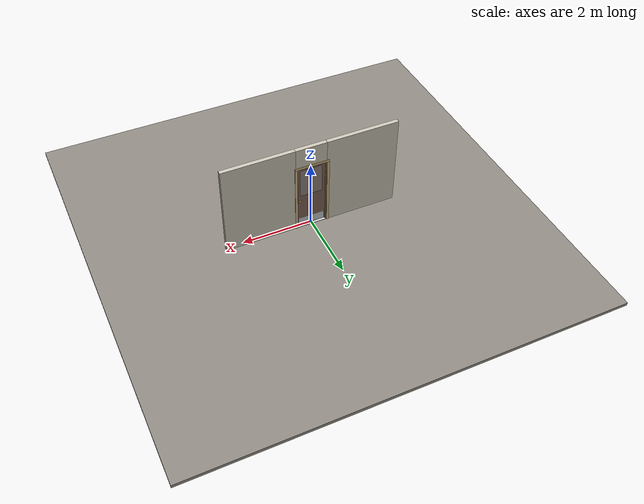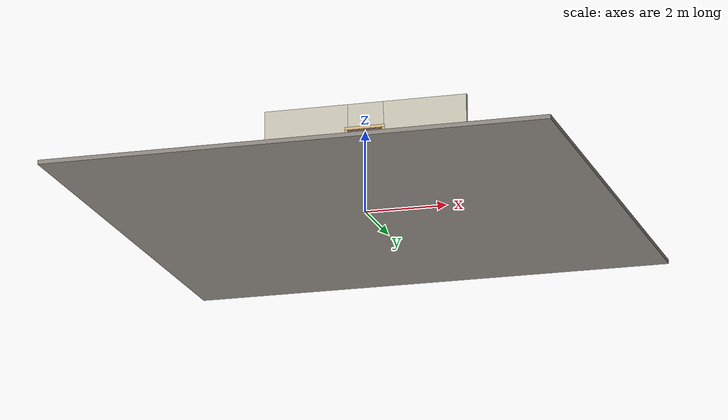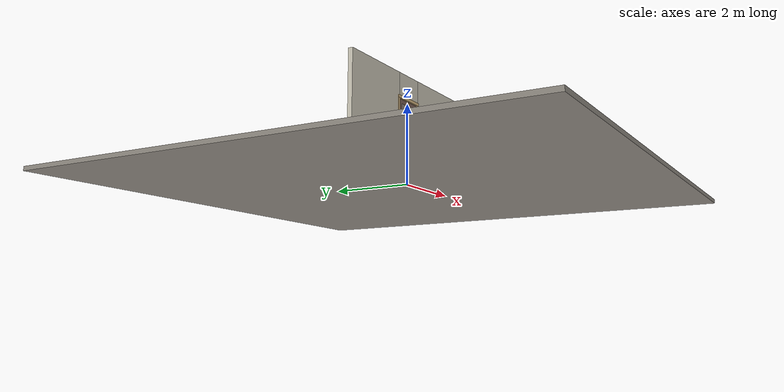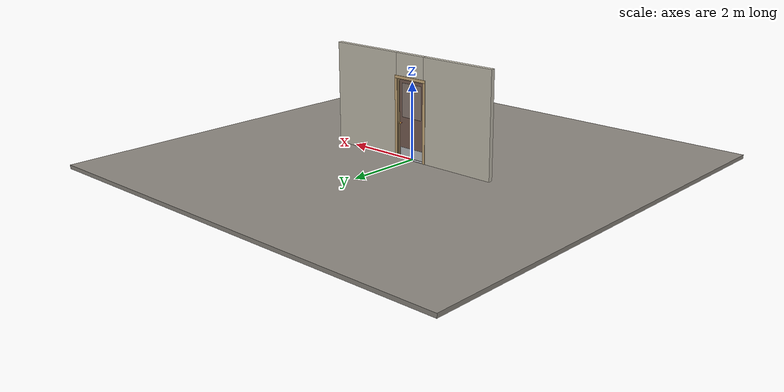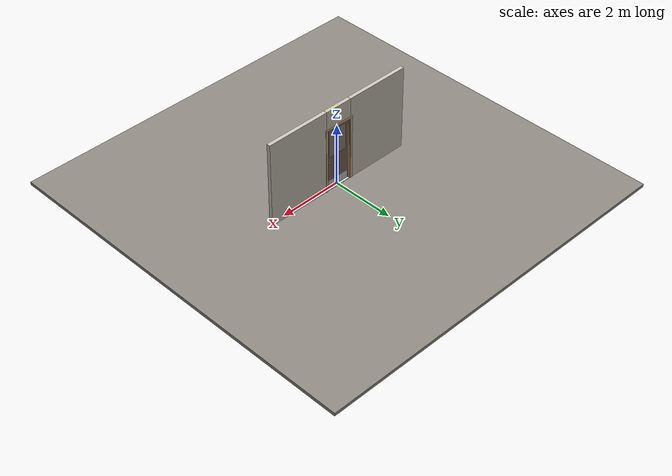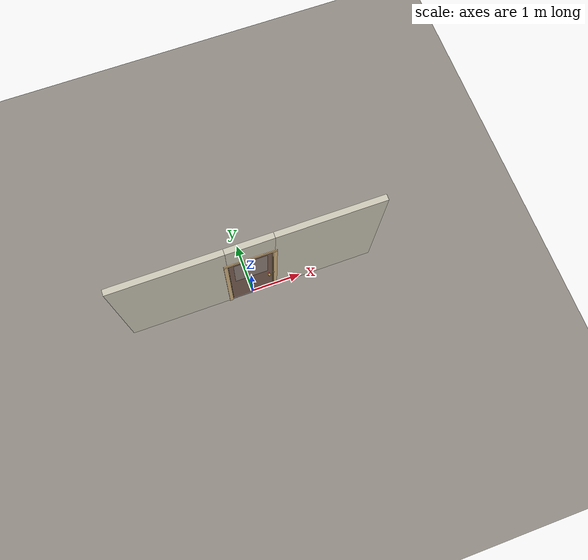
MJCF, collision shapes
<?xml version="1.0" ?>
<mujoco model="db0027_swing_single_full">
  <compiler angle="radian" meshdir="../../hardware" texturedir="../../textures" autolimits="true" inertiafromgeom="false"/>
  <option timestep="0.002" integrator="implicitfast" cone="elliptic" impratio="10" noslip_iterations="3">
    <flag multiccd="enable"/>
  </option>
  <size memory="16M"/>
  <default>
    <geom condim="4" solref="0.005 1" solimp="0.95 0.99 0.001"/>
    <joint solreflimit="0.005 1" solimplimit="0.95 0.99 0.001"/>
    <tendon solreflimit="0.005 1"/>
    <equality solref="0.002 1"/>
  </default>
  <visual>
    <headlight ambient="0.4 0.4 0.4" diffuse="0.7 0.7 0.7" specular="0.2 0.2 0.2"/>
    <quality shadowsize="4096"/>
    <map znear="0.01" zfar="60"/>
  </visual>
  <asset>
    <mesh name="hinge_e22b26c0c1" file="hinge_e22b26c0c1.obj"/>
    <mesh name="hinge_jamb_e1d088f8dc" file="hinge_jamb_e1d088f8dc.obj"/>
    <mesh name="knob_d1888f6f03" file="knob_d1888f6f03.obj"/>
    <mesh name="peephole_f829311a59" file="peephole_f829311a59.obj"/>
    <material name="mat_floor" rgba="0.55 0.53 0.5 1" specular="0.2" shininess="0.15" reflectance="0"/>
    <material name="mat_wall" rgba="0.78 0.76 0.7 1" specular="0.2" shininess="0.1" reflectance="0"/>
    <material name="mat_leaf" rgba="0.475 0.37 0.325 1" specular="0.2" shininess="0.55" reflectance="0"/>
    <material name="mat_glass" rgba="0.85 0.92 0.95 0.25" specular="0.2" shininess="0.95" reflectance="0.1"/>
    <material name="mat_hinge" rgba="0.65 0.66 0.68 1" specular="0.74" shininess="0.5" reflectance="0.36"/>
    <material name="mat_op_brass" rgba="0.85 0.66 0.3 1" specular="0.8" shininess="0.75" reflectance="0.4"/>
    <material name="mat_trim" rgba="0.85 0.66 0.3 1" specular="0.8" shininess="0.75" reflectance="0.4"/>
    <material name="mat_bolt" rgba="0.85 0.66 0.3 1" specular="0.8" shininess="0.75" reflectance="0.4"/>
    <material name="mat_frame" rgba="0.82 0.7 0.5 1" specular="0.2" shininess="0.45" reflectance="0"/>
    <material name="mat_threshold" rgba="0.8 0.81 0.83 1" specular="0.8" shininess="0.6" reflectance="0.4"/>
    <material name="mat_kick" rgba="0.75 0.76 0.77 1" specular="0.8" shininess="0.65" reflectance="0.4"/>
    <material name="mat_peephole" rgba="0.85 0.66 0.3 1" specular="0.8" shininess="0.75" reflectance="0.4"/>
    <texture name="skybox" type="skybox" builtin="gradient" rgb1="0.6 0.7 0.85" rgb2="0.9 0.92 0.95" width="256" height="256"/>
  </asset>
  <worldbody>
    <light name="sun" pos="1.5 -2.5 4" dir="-0.3 0.5 -0.8" directional="true" diffuse="0.8 0.8 0.8" specular="0.3 0.3 0.3" castshadow="true"/>
    <light name="fill" pos="-1.5 2.5 3" dir="0.3 -0.5 -0.7" directional="true" diffuse="0.35 0.35 0.4" castshadow="false"/>
    <camera name="robot_view" pos="0 -2.513687 1.734312" xyaxes="1 0 0 0 0.26963 0.962964" fovy="52"/>
    <camera name="far_view" pos="0 2.570688 1.734312" xyaxes="-1 0 0 0 -0.26963 0.962964" fovy="52"/>
    <camera name="iso" pos="1.932062 -2.106937 2.141063" xyaxes="0.741536 0.670913 0 -0.242917 0.268487 0.932151" fovy="46"/>
    <camera name="detail_handle" pos="0.5155 -0.8685 1.194" xyaxes="0.97561 0.219512 0 -0.070934 0.315262 0.94635" fovy="38"/>
    <geom name="floor" type="box" size="6 6 0.05" pos="0 0 -0.05" material="mat_floor" group="0" contype="1" conaffinity="1" friction="0.8 0.005 0.0001" density="2400"/>
    <geom name="wall_left" type="box" size="1.03525 0.0575 1.35" pos="-1.46475 0.0285 1.35" material="mat_wall" group="0" contype="1" conaffinity="1" friction="0.6 0.005 0.0001" density="800"/>
    <geom name="wall_right" type="box" size="1.02025 0.0575 1.35" pos="1.47975 0.0285 1.35" material="mat_wall" group="0" contype="1" conaffinity="1" friction="0.6 0.005 0.0001" density="800"/>
    <geom name="wall_header" type="box" size="0.4445 0.0575 0.303" pos="0.015 0.0285 2.397" material="mat_wall" group="0" contype="1" conaffinity="1" friction="0.6 0.005 0.0001" density="800"/>
    <geom name="hinge_0_jamb" type="mesh" mesh="hinge_jamb_e1d088f8dc" pos="-0.4075 -0.029 0.267" material="mat_hinge" group="1" contype="0" conaffinity="0" density="7850"/>
    <geom name="hinge_1_jamb" type="mesh" mesh="hinge_jamb_e1d088f8dc" pos="-0.4075 -0.029 1.029" material="mat_hinge" group="1" contype="0" conaffinity="0" density="7850"/>
    <geom name="hinge_2_jamb" type="mesh" mesh="hinge_jamb_e1d088f8dc" pos="-0.4075 -0.029 1.861" material="mat_hinge" group="1" contype="0" conaffinity="0" density="7850"/>
    <geom name="jamb_hinge" type="box" size="0.0095 0.0575 1.0225" pos="-0.42 0.0285 1.0225" material="mat_frame" group="0" contype="1" conaffinity="1" friction="0.6 0.005 0.0001" density="400"/>
    <geom name="strike_914_wall_n" type="box" size="0.0245 0.039075 0.0167" pos="0.435 0.046925 0.914" material="mat_frame" group="0" contype="1" conaffinity="1" friction="0.6 0.005 0.0001" density="400"/>
    <geom name="strike_914_wall_p" type="box" size="0.0245 0.008 0.0167" pos="0.435 -0.01585 0.914" material="mat_frame" group="0" contype="1" conaffinity="1" friction="0.6 0.005 0.0001" density="400"/>
    <geom name="strike_914_ramp" type="box" size="0.0245 0.01649 0.0167" pos="0.439636 -0.028673 0.914" quat="0.977148 0 0 0.212558" material="mat_frame" group="0" contype="1" conaffinity="1" friction="0.12 0.005 0.0001" density="400"/>
    <geom name="strike_914_back" type="box" size="0.01615 0.00785 0.0167" pos="0.44335 0 0.914" material="mat_frame" group="0" contype="1" conaffinity="1" friction="0.6 0.005 0.0001" density="400"/>
    <geom name="jamb_strike_0" type="box" size="0.0245 0.0575 0.44865" pos="0.435 0.0285 0.44865" material="mat_frame" group="0" contype="1" conaffinity="1" friction="0.6 0.005 0.0001" density="400"/>
    <geom name="jamb_strike_1" type="box" size="0.0245 0.0575 0.55715" pos="0.435 0.0285 1.48785" material="mat_frame" group="0" contype="1" conaffinity="1" friction="0.6 0.005 0.0001" density="400"/>
    <geom name="jamb_head" type="box" size="0.4445 0.0575 0.0095" pos="0.015 0.0285 2.0545" material="mat_frame" group="0" contype="1" conaffinity="1" friction="0.6 0.005 0.0001" density="400"/>
    <geom name="head_stud" type="box" size="0.4445 0.0575 0.015" pos="0.015 0.0285 2.079" material="mat_wall" group="0" contype="1" conaffinity="1" friction="0.6 0.005 0.0001" density="500"/>
    <geom name="stop_hinge" type="box" size="0.0055 0.016 1.0225" pos="-0.405 0.0385 1.0225" material="mat_frame" group="0" contype="1" conaffinity="1" friction="0.6 0.005 0.0001" density="400"/>
    <geom name="stop_strike" type="box" size="0.0055 0.016 1.0225" pos="0.405 0.0385 1.0225" material="mat_frame" group="0" contype="1" conaffinity="1" friction="0.6 0.005 0.0001" density="400"/>
    <geom name="stop_head" type="box" size="0.4105 0.016 0.0055" pos="0 0.0385 2.0395" material="mat_frame" group="0" contype="1" conaffinity="1" friction="0.6 0.005 0.0001" density="400"/>
    <geom name="casing_l_n" type="box" size="0.035 0.008 1.032" pos="-0.4595 -0.037 1.0225" material="mat_frame" group="2" contype="0" conaffinity="0" density="400"/>
    <geom name="casing_r_n" type="box" size="0.035 0.008 1.032" pos="0.4595 -0.037 1.0225" material="mat_frame" group="2" contype="0" conaffinity="0" density="400"/>
    <geom name="casing_h_n" type="box" size="0.4945 0.008 0.035" pos="0 -0.037 2.094" material="mat_frame" group="2" contype="0" conaffinity="0" density="400"/>
    <geom name="casing_l_p" type="box" size="0.035 0.008 1.032" pos="-0.4595 0.094 1.0225" material="mat_frame" group="2" contype="0" conaffinity="0" density="400"/>
    <geom name="casing_r_p" type="box" size="0.035 0.008 1.032" pos="0.4595 0.094 1.0225" material="mat_frame" group="2" contype="0" conaffinity="0" density="400"/>
    <geom name="casing_h_p" type="box" size="0.4945 0.008 0.035" pos="0 0.094 2.094" material="mat_frame" group="2" contype="0" conaffinity="0" density="400"/>
    <geom name="threshold" type="box" size="0.4295 0.0575 0.0065" pos="0 0.0285 0.0065" material="mat_threshold" group="0" contype="1" conaffinity="1" friction="0.5 0.005 0.0001" density="2700"/>
    <site name="approach_point" pos="0 -1.5 0" quat="1 0 0 0" size="0.05" rgba="0.2 0.9 0.2 0.5" group="4"/>
    <site name="goal_point" pos="0 1.5 0" quat="1 0 0 0" size="0.05" rgba="0.2 0.9 0.2 0.5" group="4"/>
    <site name="door_plane_center" pos="0 0 1.0225" quat="1 0 0 0" size="0.02" rgba="0.2 0.9 0.2 0.5" group="4"/>
    <body name="leaf" pos="-0.4105 0 0">
      <inertial pos="0.40039 0.001286 0.964315" mass="38.581097" quat="0.501075 -0.497605 -0.500458 -0.500855" diaginertia="2.203596765 14.33569512 16.524633644"/>
      <joint name="leaf_hinge" type="hinge" axis="0 0 -1" pos="0.003 -0.029 0" limited="true" range="0 1.570796" damping="0.210326" frictionloss="6.746414" armature="0.02"/>
      <geom name="leaf_slab" type="box" size="0.4065 0.022 1.012" pos="0.4095 0 1.029" material="mat_leaf" group="0" contype="1" conaffinity="1" friction="0.35 0.005 0.0001" density="1"/>
      <geom name="leaf_glass_0" type="box" size="0.3165 0.0228 0.43516" pos="0.4095 0 1.50464" material="mat_glass" group="1" contype="0" conaffinity="0" density="1"/>
      <geom name="hinge_0" type="mesh" mesh="hinge_e22b26c0c1" pos="0.003 -0.029 0.267" material="mat_hinge" group="1" contype="0" conaffinity="0" density="7850"/>
      <geom name="hinge_1" type="mesh" mesh="hinge_e22b26c0c1" pos="0.003 -0.029 1.029" material="mat_hinge" group="1" contype="0" conaffinity="0" density="7850"/>
      <geom name="hinge_2" type="mesh" mesh="hinge_e22b26c0c1" pos="0.003 -0.029 1.861" material="mat_hinge" group="1" contype="0" conaffinity="0" density="7850"/>
      <geom name="leaf_latch_bolt_faceplate" type="box" size="0.0006 0.01235 0.0267" pos="0.8154 0 0.914" material="mat_bolt" group="1" contype="0" conaffinity="0" density="8500"/>
      <geom name="kick_plate_p" type="box" size="0.3765 0.0008 0.125" pos="0.4095 0.0228 0.152" material="mat_kick" group="2" contype="0" conaffinity="0" density="7900"/>
      <geom name="peephole" type="mesh" mesh="peephole_f829311a59" pos="0.4095 -0.022 1.517" quat="0.707107 0.707107 0 0" material="mat_peephole" group="2" contype="0" conaffinity="0" density="8500"/>
      <site name="leaf_edge_mid" pos="0.816 0 1.012" quat="1 0 0 0" size="0.02" rgba="0.2 0.9 0.2 0.5" group="4"/>
      <body name="leaf_handle" pos="0.746 0 0.914">
        <inertial pos="0 0 0" mass="1.151952" quat="0.5 -0.5 0.5 -0.5" diaginertia="0.000312514 0.004264603 0.004264603"/>
        <joint name="leaf_handle_hinge" type="hinge" axis="0 -1 0" limited="true" range="0 0.87" damping="0.143614" frictionloss="0.038" stiffness="0.5" springref="-0.5" armature="0.01"/>
        <geom name="leaf_handle_spindle" type="cylinder" size="0.006 0.03" pos="0 0 0" quat="0.707107 -0.707107 0 0" material="mat_op_brass" group="1" contype="0" conaffinity="0" density="7850"/>
        <geom name="leaf_handle_knob_n" type="mesh" mesh="knob_d1888f6f03" pos="0 -0.022 0" quat="0.707107 0.707107 0 0" material="mat_op_brass" group="1" contype="0" conaffinity="0" density="3000"/>
        <geom name="leaf_handle_knob_col_n" type="sphere" size="0.0243" pos="0 -0.0685 0" material="mat_op_brass" group="0" contype="1" conaffinity="1" friction="0.9 0.01 0.0001" density="3000"/>
        <geom name="leaf_handle_knob_neck_n" type="cylinder" size="0.011 0.012" pos="0 -0.034 0" quat="0.707107 -0.707107 0 0" material="mat_op_brass" group="3" contype="1" conaffinity="1" rgba="0.8 0.3 0.3 0.25" friction="0.6 0.005 0.0001" density="3000"/>
        <geom name="leaf_handle_knob_p" type="mesh" mesh="knob_d1888f6f03" pos="0 0.022 0" quat="-0.707107 0.707107 0 0" material="mat_op_brass" group="1" contype="0" conaffinity="0" density="3000"/>
        <geom name="leaf_handle_knob_col_p" type="sphere" size="0.0243" pos="0 0.0685 0" material="mat_op_brass" group="0" contype="1" conaffinity="1" friction="0.9 0.01 0.0001" density="3000"/>
        <geom name="leaf_handle_knob_neck_p" type="cylinder" size="0.011 0.012" pos="0 0.034 0" quat="0.707107 -0.707107 0 0" material="mat_op_brass" group="3" contype="1" conaffinity="1" rgba="0.8 0.3 0.3 0.25" friction="0.6 0.005 0.0001" density="3000"/>
        <site name="leaf_handle_grip_n" pos="0 -0.0685 0" quat="1 0 0 0" size="0.012" rgba="0.2 0.9 0.2 0.5" group="4"/>
        <site name="leaf_handle_grip_p" pos="0 0.0685 0" quat="1 0 0 0" size="0.012" rgba="0.2 0.9 0.2 0.5" group="4"/>
      </body>
      <body name="leaf_latch_bolt" pos="0.816 0 0.914">
        <inertial pos="-0.00865 0 0" mass="0.041419" quat="0.92388 -0.382683 0 0" diaginertia="0.000000798 0.000005598 0.000005598"/>
        <joint name="leaf_latch_bolt_slide" type="slide" axis="-1 0 0" limited="true" range="0 0.0127" damping="2" frictionloss="0.3" stiffness="300" springref="-0.008333" armature="0.1"/>
        <geom name="leaf_latch_bolt_capsule" type="capsule" size="0.00635 0.015" pos="-0.00865 0 0" quat="0.707107 0 0.707107 0" material="mat_bolt" group="0" contype="1" conaffinity="1" friction="0.2 0.005 0.0001" density="8500"/>
      </body>
    </body>
  </worldbody>
  <tendon>
    <fixed name="leaf_latch_bolt_coupling" limited="true" range="0 10">
      <joint joint="leaf_latch_bolt_slide" coef="1"/>
      <joint joint="leaf_handle_hinge" coef="-0.015679"/>
    </fixed>
  </tendon>
  <sensor>
    <jointpos name="leaf_hinge_pos" joint="leaf_hinge"/>
    <jointvel name="leaf_hinge_vel" joint="leaf_hinge"/>
    <jointpos name="leaf_handle_hinge_pos" joint="leaf_handle_hinge"/>
    <jointvel name="leaf_handle_hinge_vel" joint="leaf_handle_hinge"/>
    <jointpos name="leaf_latch_bolt_slide_pos" joint="leaf_latch_bolt_slide"/>
    <jointvel name="leaf_latch_bolt_slide_vel" joint="leaf_latch_bolt_slide"/>
  </sensor>
</mujoco>
